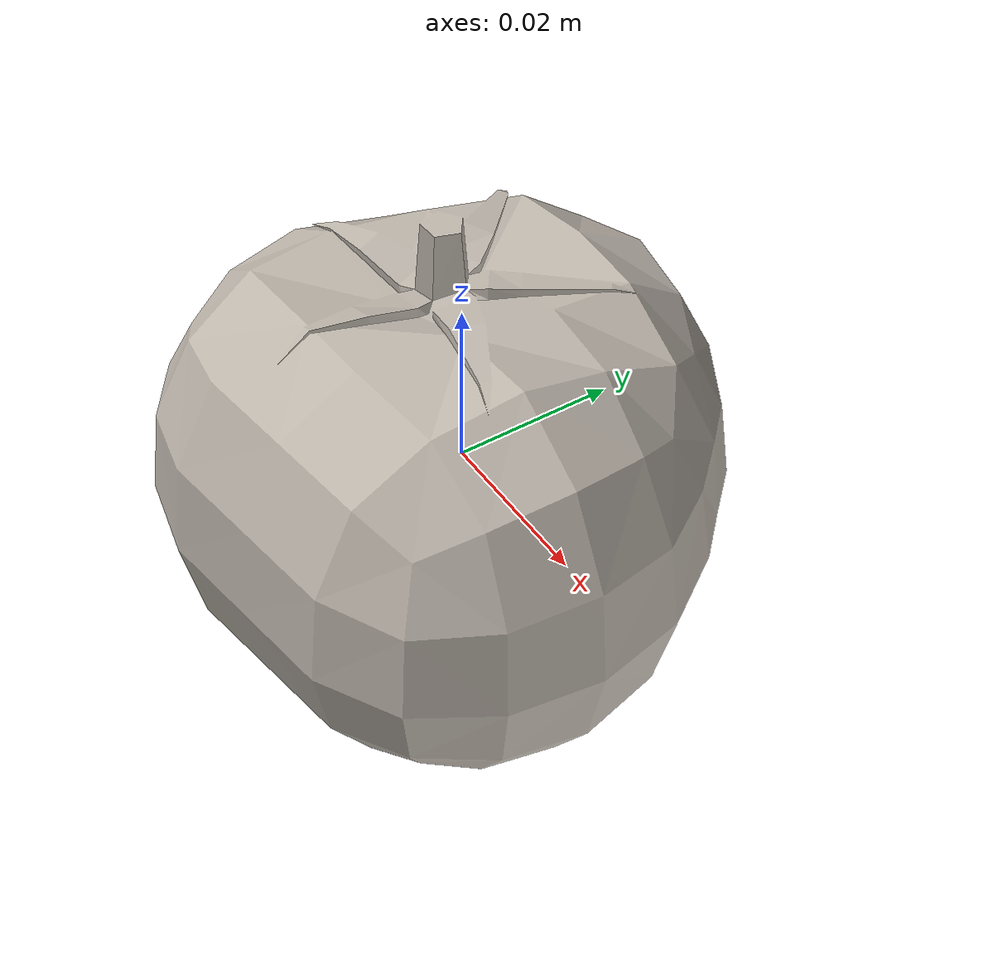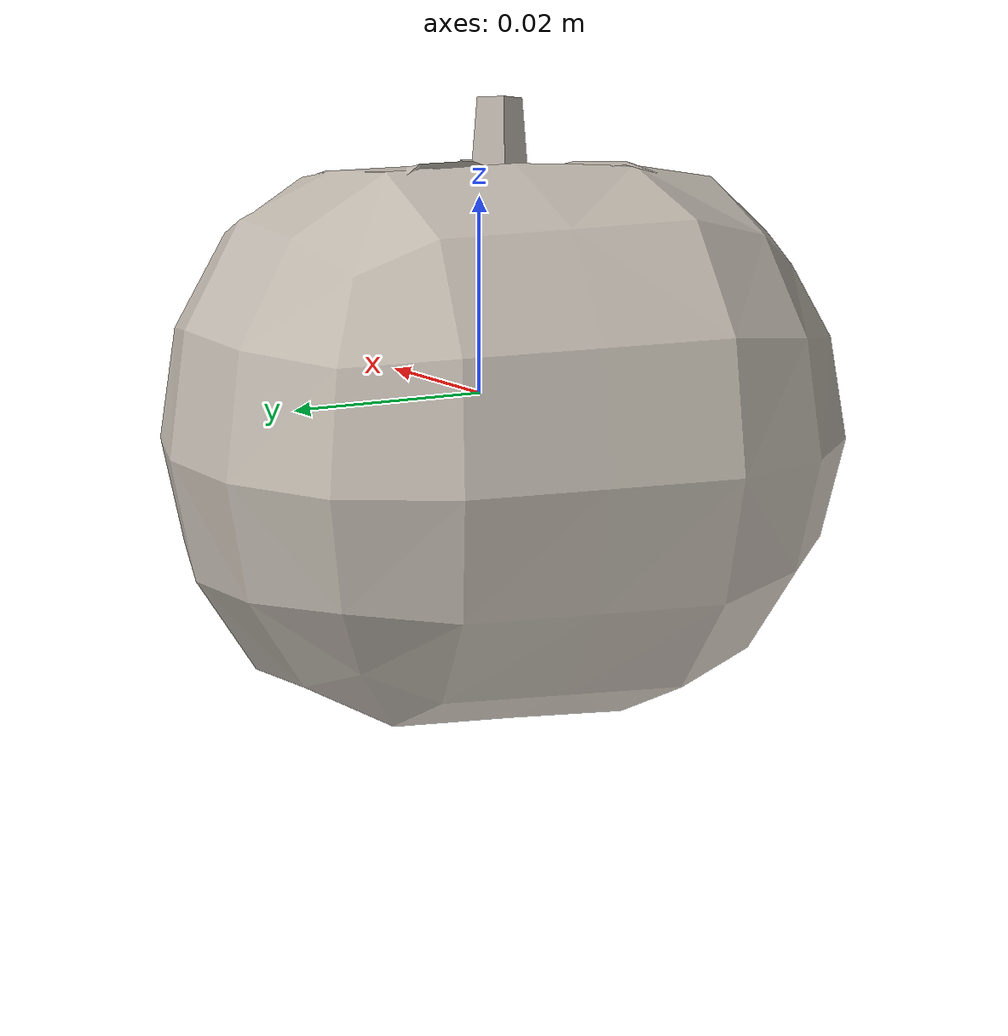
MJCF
<mujoco model="tomato_12">
  <asset>
    <mesh file="visual/model_normalized_0.obj" name="model_normalized_0_vis" scale="0.06500000000000003 0.06500000000000003 0.06500000000000003" refquat="1.0 0.0 0.0 0.0"/>
    <mesh file="collision/model_normalized_collision_22.obj" name="model_normalized_collision_22._coll" scale="0.06500000000000003 0.06500000000000003 0.06500000000000003" refquat="1.0 0.0 0.0 0.0"/>
    <mesh file="collision/model_normalized_collision_23.obj" name="model_normalized_collision_23._coll" scale="0.06500000000000003 0.06500000000000003 0.06500000000000003" refquat="1.0 0.0 0.0 0.0"/>
    <mesh file="collision/model_normalized_collision_21.obj" name="model_normalized_collision_21._coll" scale="0.06500000000000003 0.06500000000000003 0.06500000000000003" refquat="1.0 0.0 0.0 0.0"/>
    <mesh file="collision/model_normalized_collision_20.obj" name="model_normalized_collision_20._coll" scale="0.06500000000000003 0.06500000000000003 0.06500000000000003" refquat="1.0 0.0 0.0 0.0"/>
    <mesh file="collision/model_normalized_collision_24.obj" name="model_normalized_collision_24._coll" scale="0.06500000000000003 0.06500000000000003 0.06500000000000003" refquat="1.0 0.0 0.0 0.0"/>
    <mesh file="collision/model_normalized_collision_30.obj" name="model_normalized_collision_30._coll" scale="0.06500000000000003 0.06500000000000003 0.06500000000000003" refquat="1.0 0.0 0.0 0.0"/>
    <mesh file="collision/model_normalized_collision_18.obj" name="model_normalized_collision_18._coll" scale="0.06500000000000003 0.06500000000000003 0.06500000000000003" refquat="1.0 0.0 0.0 0.0"/>
    <mesh file="collision/model_normalized_collision_19.obj" name="model_normalized_collision_19._coll" scale="0.06500000000000003 0.06500000000000003 0.06500000000000003" refquat="1.0 0.0 0.0 0.0"/>
    <mesh file="collision/model_normalized_collision_31.obj" name="model_normalized_collision_31._coll" scale="0.06500000000000003 0.06500000000000003 0.06500000000000003" refquat="1.0 0.0 0.0 0.0"/>
    <mesh file="collision/model_normalized_collision_25.obj" name="model_normalized_collision_25._coll" scale="0.06500000000000003 0.06500000000000003 0.06500000000000003" refquat="1.0 0.0 0.0 0.0"/>
    <mesh file="collision/model_normalized_collision_27.obj" name="model_normalized_collision_27._coll" scale="0.06500000000000003 0.06500000000000003 0.06500000000000003" refquat="1.0 0.0 0.0 0.0"/>
    <mesh file="collision/model_normalized_collision_26.obj" name="model_normalized_collision_26._coll" scale="0.06500000000000003 0.06500000000000003 0.06500000000000003" refquat="1.0 0.0 0.0 0.0"/>
    <mesh file="collision/model_normalized_collision_9.obj" name="model_normalized_collision_9._coll" scale="0.06500000000000003 0.06500000000000003 0.06500000000000003" refquat="1.0 0.0 0.0 0.0"/>
    <mesh file="collision/model_normalized_collision_8.obj" name="model_normalized_collision_8._coll" scale="0.06500000000000003 0.06500000000000003 0.06500000000000003" refquat="1.0 0.0 0.0 0.0"/>
    <mesh file="collision/model_normalized_collision_6.obj" name="model_normalized_collision_6._coll" scale="0.06500000000000003 0.06500000000000003 0.06500000000000003" refquat="1.0 0.0 0.0 0.0"/>
    <mesh file="collision/model_normalized_collision_7.obj" name="model_normalized_collision_7._coll" scale="0.06500000000000003 0.06500000000000003 0.06500000000000003" refquat="1.0 0.0 0.0 0.0"/>
    <mesh file="collision/model_normalized_collision_5.obj" name="model_normalized_collision_5._coll" scale="0.06500000000000003 0.06500000000000003 0.06500000000000003" refquat="1.0 0.0 0.0 0.0"/>
    <mesh file="collision/model_normalized_collision_4.obj" name="model_normalized_collision_4._coll" scale="0.06500000000000003 0.06500000000000003 0.06500000000000003" refquat="1.0 0.0 0.0 0.0"/>
    <mesh file="collision/model_normalized_collision_0.obj" name="model_normalized_collision_0._coll" scale="0.06500000000000003 0.06500000000000003 0.06500000000000003" refquat="1.0 0.0 0.0 0.0"/>
    <mesh file="collision/model_normalized_collision_1.obj" name="model_normalized_collision_1._coll" scale="0.06500000000000003 0.06500000000000003 0.06500000000000003" refquat="1.0 0.0 0.0 0.0"/>
    <mesh file="collision/model_normalized_collision_3.obj" name="model_normalized_collision_3._coll" scale="0.06500000000000003 0.06500000000000003 0.06500000000000003" refquat="1.0 0.0 0.0 0.0"/>
    <mesh file="collision/model_normalized_collision_2.obj" name="model_normalized_collision_2._coll" scale="0.06500000000000003 0.06500000000000003 0.06500000000000003" refquat="1.0 0.0 0.0 0.0"/>
    <mesh file="collision/model_normalized_collision_17.obj" name="model_normalized_collision_17._coll" scale="0.06500000000000003 0.06500000000000003 0.06500000000000003" refquat="1.0 0.0 0.0 0.0"/>
    <mesh file="collision/model_normalized_collision_16.obj" name="model_normalized_collision_16._coll" scale="0.06500000000000003 0.06500000000000003 0.06500000000000003" refquat="1.0 0.0 0.0 0.0"/>
    <mesh file="collision/model_normalized_collision_28.obj" name="model_normalized_collision_28._coll" scale="0.06500000000000003 0.06500000000000003 0.06500000000000003" refquat="1.0 0.0 0.0 0.0"/>
    <mesh file="collision/model_normalized_collision_14.obj" name="model_normalized_collision_14._coll" scale="0.06500000000000003 0.06500000000000003 0.06500000000000003" refquat="1.0 0.0 0.0 0.0"/>
    <mesh file="collision/model_normalized_collision_15.obj" name="model_normalized_collision_15._coll" scale="0.06500000000000003 0.06500000000000003 0.06500000000000003" refquat="1.0 0.0 0.0 0.0"/>
    <mesh file="collision/model_normalized_collision_29.obj" name="model_normalized_collision_29._coll" scale="0.06500000000000003 0.06500000000000003 0.06500000000000003" refquat="1.0 0.0 0.0 0.0"/>
    <mesh file="collision/model_normalized_collision_11.obj" name="model_normalized_collision_11._coll" scale="0.06500000000000003 0.06500000000000003 0.06500000000000003" refquat="1.0 0.0 0.0 0.0"/>
    <mesh file="collision/model_normalized_collision_10.obj" name="model_normalized_collision_10._coll" scale="0.06500000000000003 0.06500000000000003 0.06500000000000003" refquat="1.0 0.0 0.0 0.0"/>
    <mesh file="collision/model_normalized_collision_12.obj" name="model_normalized_collision_12._coll" scale="0.06500000000000003 0.06500000000000003 0.06500000000000003" refquat="1.0 0.0 0.0 0.0"/>
    <mesh file="collision/model_normalized_collision_13.obj" name="model_normalized_collision_13._coll" scale="0.06500000000000003 0.06500000000000003 0.06500000000000003" refquat="1.0 0.0 0.0 0.0"/>
    <texture type="2d" name="image0" file="visual/image0.png"/>
    <material name="01_-_Default.031" texture="image0" specular="0.5" shininess="0.359999993"/>
  </asset>
  <worldbody>
    <body>
      <body name="object">
        <geom solimp="0.998 0.998 0.001" solref="0.001 1" density="100" friction="0.95 0.3 0.1" type="mesh" mesh="model_normalized_0_vis" conaffinity="0" contype="0" group="1" material="01_-_Default.031"/>
        <geom solimp="0.998 0.998 0.001" solref="0.001 1" density="100" friction="0.95 0.3 0.1" type="mesh" mesh="model_normalized_collision_22._coll" group="0" rgba="0.8 0.8 0.8 0.0"/>
        <geom solimp="0.998 0.998 0.001" solref="0.001 1" density="100" friction="0.95 0.3 0.1" type="mesh" mesh="model_normalized_collision_23._coll" group="0" rgba="0.8 0.8 0.8 0.0"/>
        <geom solimp="0.998 0.998 0.001" solref="0.001 1" density="100" friction="0.95 0.3 0.1" type="mesh" mesh="model_normalized_collision_21._coll" group="0" rgba="0.8 0.8 0.8 0.0"/>
        <geom solimp="0.998 0.998 0.001" solref="0.001 1" density="100" friction="0.95 0.3 0.1" type="mesh" mesh="model_normalized_collision_20._coll" group="0" rgba="0.8 0.8 0.8 0.0"/>
        <geom solimp="0.998 0.998 0.001" solref="0.001 1" density="100" friction="0.95 0.3 0.1" type="mesh" mesh="model_normalized_collision_24._coll" group="0" rgba="0.8 0.8 0.8 0.0"/>
        <geom solimp="0.998 0.998 0.001" solref="0.001 1" density="100" friction="0.95 0.3 0.1" type="mesh" mesh="model_normalized_collision_30._coll" group="0" rgba="0.8 0.8 0.8 0.0"/>
        <geom solimp="0.998 0.998 0.001" solref="0.001 1" density="100" friction="0.95 0.3 0.1" type="mesh" mesh="model_normalized_collision_18._coll" group="0" rgba="0.8 0.8 0.8 0.0"/>
        <geom solimp="0.998 0.998 0.001" solref="0.001 1" density="100" friction="0.95 0.3 0.1" type="mesh" mesh="model_normalized_collision_19._coll" group="0" rgba="0.8 0.8 0.8 0.0"/>
        <geom solimp="0.998 0.998 0.001" solref="0.001 1" density="100" friction="0.95 0.3 0.1" type="mesh" mesh="model_normalized_collision_31._coll" group="0" rgba="0.8 0.8 0.8 0.0"/>
        <geom solimp="0.998 0.998 0.001" solref="0.001 1" density="100" friction="0.95 0.3 0.1" type="mesh" mesh="model_normalized_collision_25._coll" group="0" rgba="0.8 0.8 0.8 0.0"/>
        <geom solimp="0.998 0.998 0.001" solref="0.001 1" density="100" friction="0.95 0.3 0.1" type="mesh" mesh="model_normalized_collision_27._coll" group="0" rgba="0.8 0.8 0.8 0.0"/>
        <geom solimp="0.998 0.998 0.001" solref="0.001 1" density="100" friction="0.95 0.3 0.1" type="mesh" mesh="model_normalized_collision_26._coll" group="0" rgba="0.8 0.8 0.8 0.0"/>
        <geom solimp="0.998 0.998 0.001" solref="0.001 1" density="100" friction="0.95 0.3 0.1" type="mesh" mesh="model_normalized_collision_9._coll" group="0" rgba="0.8 0.8 0.8 0.0"/>
        <geom solimp="0.998 0.998 0.001" solref="0.001 1" density="100" friction="0.95 0.3 0.1" type="mesh" mesh="model_normalized_collision_8._coll" group="0" rgba="0.8 0.8 0.8 0.0"/>
        <geom solimp="0.998 0.998 0.001" solref="0.001 1" density="100" friction="0.95 0.3 0.1" type="mesh" mesh="model_normalized_collision_6._coll" group="0" rgba="0.8 0.8 0.8 0.0"/>
        <geom solimp="0.998 0.998 0.001" solref="0.001 1" density="100" friction="0.95 0.3 0.1" type="mesh" mesh="model_normalized_collision_7._coll" group="0" rgba="0.8 0.8 0.8 0.0"/>
        <geom solimp="0.998 0.998 0.001" solref="0.001 1" density="100" friction="0.95 0.3 0.1" type="mesh" mesh="model_normalized_collision_5._coll" group="0" rgba="0.8 0.8 0.8 0.0"/>
        <geom solimp="0.998 0.998 0.001" solref="0.001 1" density="100" friction="0.95 0.3 0.1" type="mesh" mesh="model_normalized_collision_4._coll" group="0" rgba="0.8 0.8 0.8 0.0"/>
        <geom solimp="0.998 0.998 0.001" solref="0.001 1" density="100" friction="0.95 0.3 0.1" type="mesh" mesh="model_normalized_collision_0._coll" group="0" rgba="0.8 0.8 0.8 0.0"/>
        <geom solimp="0.998 0.998 0.001" solref="0.001 1" density="100" friction="0.95 0.3 0.1" type="mesh" mesh="model_normalized_collision_1._coll" group="0" rgba="0.8 0.8 0.8 0.0"/>
        <geom solimp="0.998 0.998 0.001" solref="0.001 1" density="100" friction="0.95 0.3 0.1" type="mesh" mesh="model_normalized_collision_3._coll" group="0" rgba="0.8 0.8 0.8 0.0"/>
        <geom solimp="0.998 0.998 0.001" solref="0.001 1" density="100" friction="0.95 0.3 0.1" type="mesh" mesh="model_normalized_collision_2._coll" group="0" rgba="0.8 0.8 0.8 0.0"/>
        <geom solimp="0.998 0.998 0.001" solref="0.001 1" density="100" friction="0.95 0.3 0.1" type="mesh" mesh="model_normalized_collision_17._coll" group="0" rgba="0.8 0.8 0.8 0.0"/>
        <geom solimp="0.998 0.998 0.001" solref="0.001 1" density="100" friction="0.95 0.3 0.1" type="mesh" mesh="model_normalized_collision_16._coll" group="0" rgba="0.8 0.8 0.8 0.0"/>
        <geom solimp="0.998 0.998 0.001" solref="0.001 1" density="100" friction="0.95 0.3 0.1" type="mesh" mesh="model_normalized_collision_28._coll" group="0" rgba="0.8 0.8 0.8 0.0"/>
        <geom solimp="0.998 0.998 0.001" solref="0.001 1" density="100" friction="0.95 0.3 0.1" type="mesh" mesh="model_normalized_collision_14._coll" group="0" rgba="0.8 0.8 0.8 0.0"/>
        <geom solimp="0.998 0.998 0.001" solref="0.001 1" density="100" friction="0.95 0.3 0.1" type="mesh" mesh="model_normalized_collision_15._coll" group="0" rgba="0.8 0.8 0.8 0.0"/>
        <geom solimp="0.998 0.998 0.001" solref="0.001 1" density="100" friction="0.95 0.3 0.1" type="mesh" mesh="model_normalized_collision_29._coll" group="0" rgba="0.8 0.8 0.8 0.0"/>
        <geom solimp="0.998 0.998 0.001" solref="0.001 1" density="100" friction="0.95 0.3 0.1" type="mesh" mesh="model_normalized_collision_11._coll" group="0" rgba="0.8 0.8 0.8 0.0"/>
        <geom solimp="0.998 0.998 0.001" solref="0.001 1" density="100" friction="0.95 0.3 0.1" type="mesh" mesh="model_normalized_collision_10._coll" group="0" rgba="0.8 0.8 0.8 0.0"/>
        <geom solimp="0.998 0.998 0.001" solref="0.001 1" density="100" friction="0.95 0.3 0.1" type="mesh" mesh="model_normalized_collision_12._coll" group="0" rgba="0.8 0.8 0.8 0.0"/>
        <geom solimp="0.998 0.998 0.001" solref="0.001 1" density="100" friction="0.95 0.3 0.1" type="mesh" mesh="model_normalized_collision_13._coll" group="0" rgba="0.8 0.8 0.8 0.0"/>
      </body>
      <site rgba="0 0 0 0" size="0.005" pos="0.00010024105000000066 1.3805675000000273e-05 -0.028852916950000015" name="bottom_site"/>
      <site rgba="0 0 0 0" size="0.005" pos="0.00010024105000000066 1.3805675000000273e-05 0.029303301950000013" name="top_site"/>
      <site rgba="0 0 0 0" size="0.005" pos="0.03205130955000002 0.03189410380000002 0.0002251924999999989" name="horizontal_radius_site"/>
    </body>
    </worldbody>
</mujoco>
